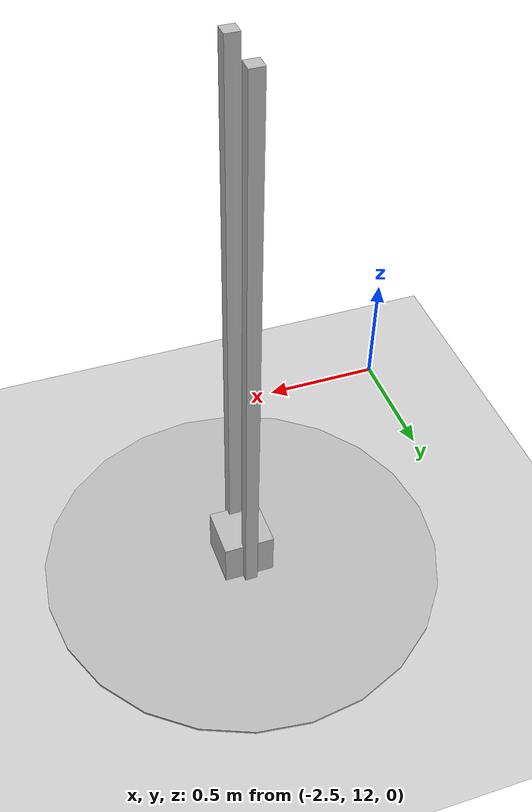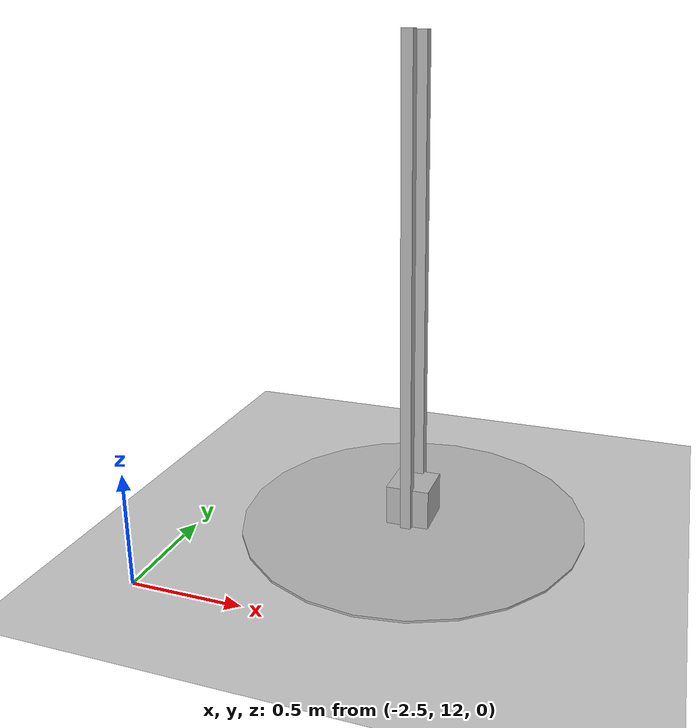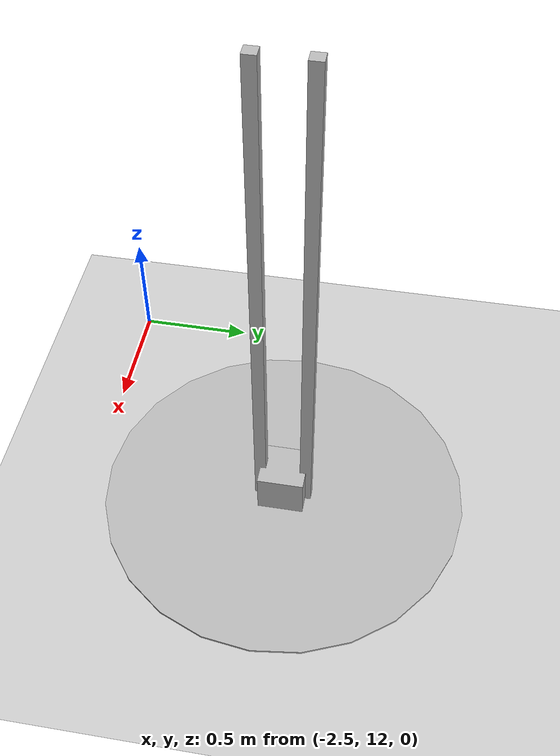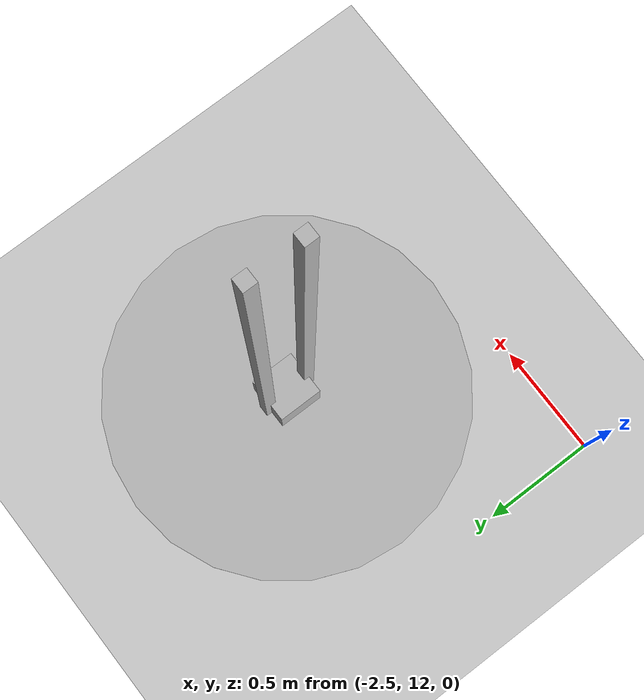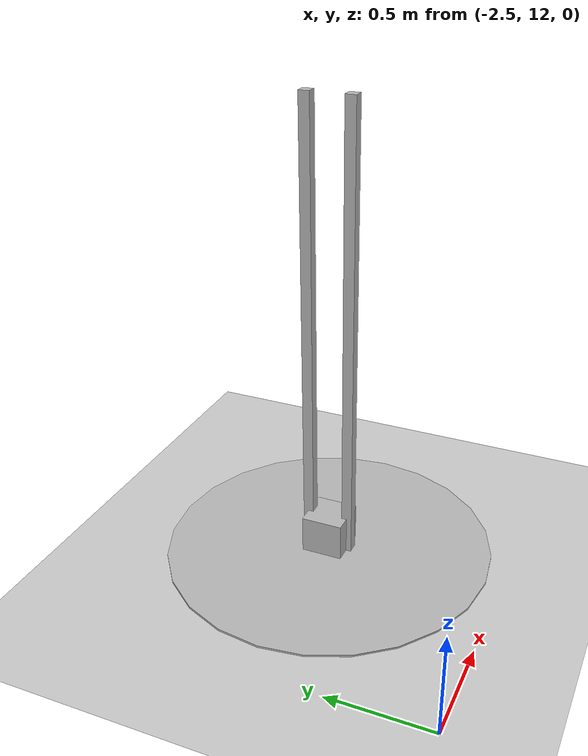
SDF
<sdf version="1.6">
 <world name="default">
  <model name="ground_plane">
   <static>1</static>
   <link name="link">
    <collision name="collision">
     <geometry><plane><normal>0 0 1</normal><size>100 100</size></plane></geometry>
     <surface>
      <contact><collide_bitmask>65535</collide_bitmask></contact>
      <friction><ode><mu>100</mu><mu2>50</mu2></ode></friction>
     </surface>
    </collision>
    <visual name="visual">
     <cast_shadows>0</cast_shadows>
     <geometry><plane><normal>0 0 1</normal><size>100 100</size></plane></geometry>
     <material>
      <script><uri>file://media/materials/scripts/gazebo.material</uri><name>Gazebo/Grey</name></script>
     </material>
    </visual>
   </link>
  </model>
  <model name="mass_on_rails">
   <link name="base">
    <inertial>
     <mass>100</mass>
     <inertia><ixx>1</ixx><ixy>0</ixy><ixz>0</ixz><iyy>1</iyy><iyz>0</iyz><izz>1</izz></inertia>
    </inertial>
    <visual name="vis_base">
     <pose>0 0 0.01 0 -0 0</pose>
     <geometry><cylinder><radius>0.8</radius><length>0.01</length></cylinder></geometry>
    </visual>
    <collision name="col_base">
     <pose>0 0 0.01 0 -0 0</pose>
     <geometry><cylinder><radius>0.8</radius><length>0.01</length></cylinder></geometry>
    </collision>
    <visual name="vis_rail1">
     <pose>0 0.1 1.1 0 -0 0</pose>
     <geometry><box><size>0.05 0.05 2.2</size></box></geometry>
    </visual>
    <collision name="col_rail1">
     <pose>0 0.1 1.1 0 -0 0</pose>
     <geometry><box><size>0.05 0.05 2.2</size></box></geometry>
    </collision>
    <visual name="vis_rail2">
     <pose>0 -0.1 1.1 0 -0 0</pose>
     <geometry><box><size>0.05 0.05 2.2</size></box></geometry>
    </visual>
    <collision name="col_rail2">
     <pose>0 -0.1 1.1 0 -0 0</pose>
     <geometry><box><size>0.05 0.05 2.2</size></box></geometry>
    </collision>
   </link>
   <link name="mass">
    <inertial>
     <mass>0.1</mass>
     <pose>0 0 0.1 0 -0 0</pose>
     <inertia><ixx>0.00067</ixx><ixy>0</ixy><ixz>0</ixz><iyy>0.00067</iyy><iyz>0</iyz><izz>0.00067</izz></inertia>
    </inertial>
    <visual name="visual">
     <pose>0 0 0.1 0 -0 0</pose>
     <geometry><box><size>0.2 0.2 0.2</size></box></geometry>
    </visual>
    <collision name="collision">
     <pose>0 0 0.1 0 -0 0</pose>
     <geometry><box><size>0.2 0.2 0.2</size></box></geometry>
    </collision>
   </link>
   <joint name="joint" type="prismatic">
    <parent>base</parent>
    <child>mass</child>
    <axis>
     <dynamics>
      <damping>0.01</damping>
      <friction>0.01</friction>
      <spring_reference>0</spring_reference>
      <spring_stiffness>0</spring_stiffness>
     </dynamics>
     <xyz>0 0 1</xyz>
     <limit><lower>0</lower><upper>2</upper></limit>
     <use_parent_model_frame>0</use_parent_model_frame>
    </axis>
   </joint>
   <pose>-1.55143 12.8713 0 0 -0 0</pose>
  </model>
 </world>
</sdf>
